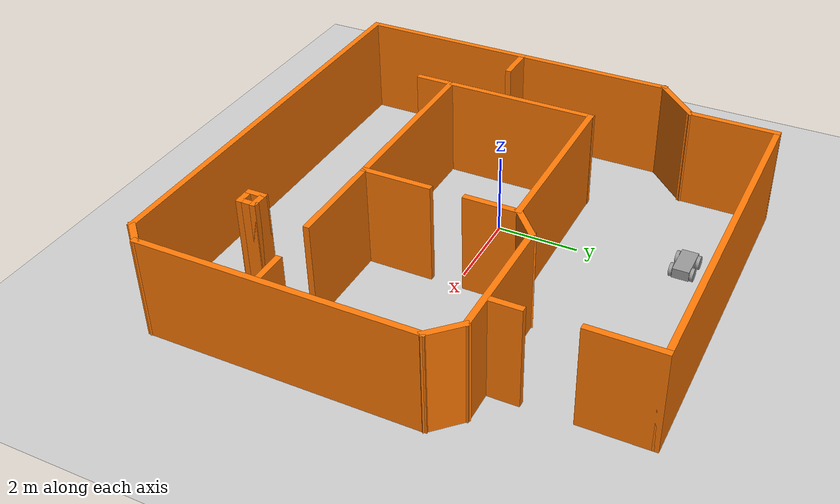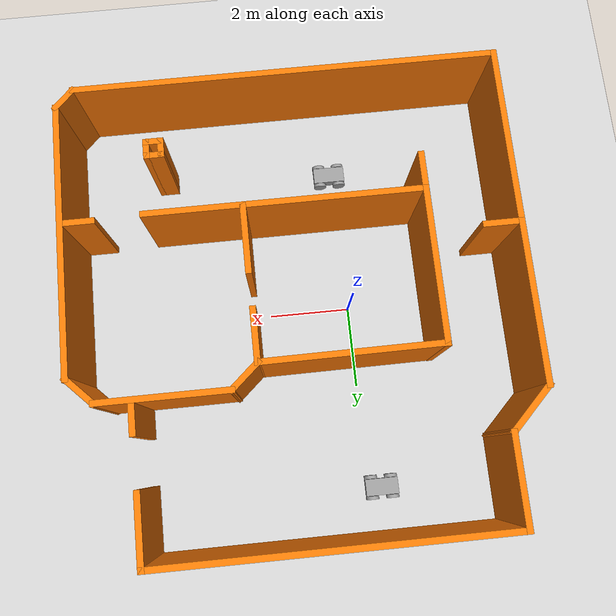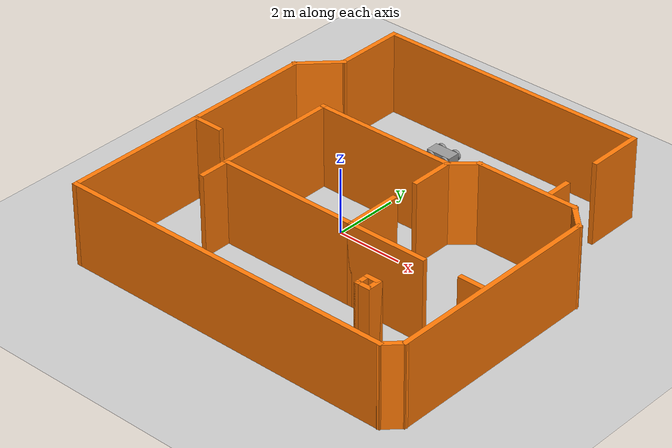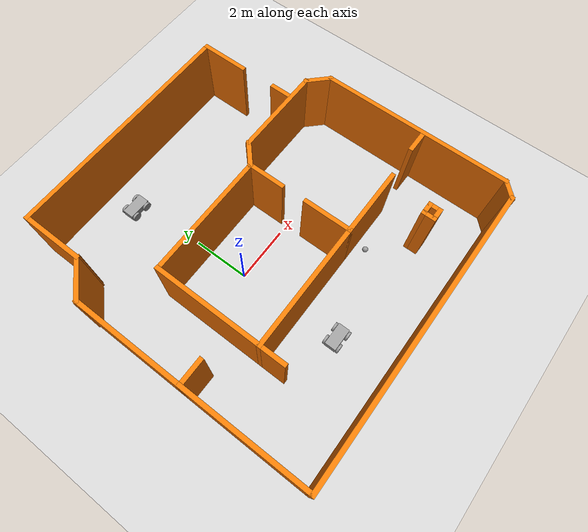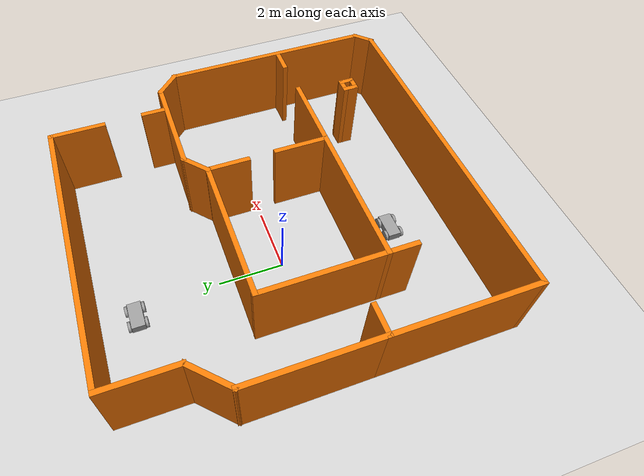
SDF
<sdf version="1.6">
 <world name="default">
  <plugin name="hello" filename="libhello.so"/>
  <light name="sun" type="directional">
   <pose>0 0 10 0 -0 0</pose>
   <diffuse>0.8 0.8 0.8 1</diffuse>
   <specular>0.2 0.2 0.2 1</specular>
   <attenuation>
    <range>1000</range>
    <constant>0.9</constant>
    <linear>0.01</linear>
    <quadratic>0.001</quadratic>
   </attenuation>
   <direction>-0.5 0.1 -0.9</direction>
   <spot><inner_angle>0</inner_angle><outer_angle>0</outer_angle><falloff>0</falloff></spot>
  </light>
  <model name="ground_plane">
   <static>1</static>
   <link name="link">
    <collision name="collision">
     <geometry><plane><normal>0 0 1</normal><size>100 100</size></plane></geometry>
     <surface>
      <contact><collide_bitmask>65535</collide_bitmask></contact>
      <friction><ode><mu>100</mu><mu2>50</mu2></ode></friction>
     </surface>
    </collision>
    <visual name="visual">
     <cast_shadows>0</cast_shadows>
     <geometry><plane><normal>0 0 1</normal><size>100 100</size></plane></geometry>
     <material>
      <script><uri>file://media/materials/scripts/gazebo.material</uri><name>Gazebo/Grey</name></script>
     </material>
    </visual>
   </link>
  </model>
  <gravity>0 0 -9.8</gravity>
  <magnetic_field>6e-06 2.3e-05 -4.2e-05</magnetic_field>
  <atmosphere type="adiabatic"/>
  <physics name="default_physics" default="0" type="ode">
   <max_step_size>0.001</max_step_size>
   <real_time_factor>1</real_time_factor>
   <real_time_update_rate>1000</real_time_update_rate>
  </physics>
  <scene><ambient>0.4 0.4 0.4 1</ambient><background>0.7 0.7 0.7 1</background><shadows>1</shadows></scene>
  <spherical_coordinates>
   <surface_model>EARTH_WGS84</surface_model>
   <latitude_deg>0</latitude_deg>
   <longitude_deg>0</longitude_deg>
   <elevation>0</elevation>
   <heading_deg>0</heading_deg>
  </spherical_coordinates>
  <model name="tinyHouse">
   <pose>1.31288 0.03056 0 0 -0 0</pose>
   <link name="Wall_10">
    <collision name="Wall_10_Collision">
     <geometry><box><size>0.75 0.15 2.5</size></box></geometry>
     <pose>0 0 1.25 0 -0 0</pose>
    </collision>
    <visual name="Wall_10_Visual">
     <pose>0 0 1.25 0 -0 0</pose>
     <geometry><box><size>0.75 0.15 2.5</size></box></geometry>
     <material>
      <script><uri>file://media/materials/scripts/gazebo.material</uri><name>Gazebo/Grey</name></script>
      <ambient>0.996078 0.47451 0.0196078 1</ambient>
     </material>
     <meta><layer>0</layer></meta>
    </visual>
    <pose>5.175 -5.39963 0 0 -0 -2.35619</pose>
   </link>
   <link name="Wall_11">
    <collision name="Wall_11_Collision">
     <geometry><box><size>10.5 0.15 2.5</size></box></geometry>
     <pose>0 0 1.25 0 -0 0</pose>
    </collision>
    <visual name="Wall_11_Visual">
     <pose>0 0 1.25 0 -0 0</pose>
     <geometry><box><size>10.5 0.15 2.5</size></box></geometry>
     <material>
      <script><uri>file://media/materials/scripts/gazebo.material</uri><name>Gazebo/Grey</name></script>
      <ambient>0.996078 0.47451 0.0196078 1</ambient>
     </material>
     <meta><layer>0</layer></meta>
    </visual>
    <pose>-0.212132 -5.61176 0 0 -0 3.14159</pose>
   </link>
   <link name="Wall_12">
    <collision name="Wall_12_Collision">
     <geometry><box><size>4.5 0.15 2.5</size></box></geometry>
     <pose>0 0 1.25 0 -0 0</pose>
    </collision>
    <visual name="Wall_12_Visual">
     <pose>0 0 1.25 0 -0 0</pose>
     <geometry><box><size>4.5 0.15 2.5</size></box></geometry>
     <material>
      <script><uri>file://media/materials/scripts/gazebo.material</uri><name>Gazebo/Grey</name></script>
      <ambient>0.996078 0.47451 0.0196078 1</ambient>
     </material>
     <meta><layer>0</layer></meta>
    </visual>
    <pose>-5.38713 -3.43676 0 0 -0 1.5708</pose>
   </link>
   <link name="Wall_13">
    <collision name="Wall_13_Collision">
     <geometry><box><size>1 0.15 2.5</size></box></geometry>
     <pose>0 0 1.25 0 -0 0</pose>
    </collision>
    <visual name="Wall_13_Visual">
     <pose>0 0 1.25 0 -0 0</pose>
     <geometry><box><size>1 0.15 2.5</size></box></geometry>
     <material>
      <script><uri>file://media/materials/scripts/gazebo.material</uri><name>Gazebo/Grey</name></script>
      <ambient>0.996078 0.47451 0.0196078 1</ambient>
     </material>
     <meta><layer>0</layer></meta>
    </visual>
    <pose>-4.96213 -1.26176 0 0 -0 0</pose>
   </link>
   <link name="Wall_18">
    <collision name="Wall_18_Collision">
     <geometry><box><size>0.5 0.15 2.5</size></box></geometry>
     <pose>0 0 1.25 0 -0 0</pose>
    </collision>
    <visual name="Wall_18_Visual">
     <pose>0 0 1.25 0 -0 0</pose>
     <geometry><box><size>0.5 0.15 2.5</size></box></geometry>
     <material>
      <script><uri>file://media/materials/scripts/gazebo.material</uri><name>Gazebo/Grey</name></script>
      <ambient>0.996078 0.47451 0.0196078 1</ambient>
     </material>
     <meta><layer>0</layer></meta>
    </visual>
    <pose>2.917 -3.91199 0 0 -0 -1.5708</pose>
   </link>
   <link name="Wall_19">
    <collision name="Wall_19_Collision">
     <geometry><box><size>0.5 0.15 2.5</size></box></geometry>
     <pose>0 0 1.25 0 -0 0</pose>
    </collision>
    <visual name="Wall_19_Visual">
     <pose>0 0 1.25 0 -0 0</pose>
     <geometry><box><size>0.5 0.15 2.5</size></box></geometry>
     <material>
      <script><uri>file://media/materials/scripts/gazebo.material</uri><name>Gazebo/Grey</name></script>
      <ambient>0.996078 0.47451 0.0196078 1</ambient>
     </material>
     <meta><layer>0</layer></meta>
    </visual>
    <pose>3.092 -4.08699 0 0 -0 0</pose>
   </link>
   <link name="Wall_2">
    <collision name="Wall_2_Collision">
     <geometry><box><size>4.5 0.15 2.5</size></box></geometry>
     <pose>0 0 1.25 0 -0 0</pose>
    </collision>
    <visual name="Wall_2_Visual">
     <pose>0 0 1.25 0 -0 0</pose>
     <geometry><box><size>4.5 0.15 2.5</size></box></geometry>
     <material>
      <script><uri>file://media/materials/scripts/gazebo.material</uri><name>Gazebo/Grey</name></script>
      <ambient>0.996078 0.47451 0.0196078 1</ambient>
     </material>
     <meta><layer>0</layer></meta>
    </visual>
    <pose>-1.08995 -2.2875 0 0 -0 0</pose>
   </link>
   <link name="Wall_20">
    <collision name="Wall_20_Collision">
     <geometry><box><size>0.5 0.15 2.5</size></box></geometry>
     <pose>0 0 1.25 0 -0 0</pose>
    </collision>
    <visual name="Wall_20_Visual">
     <pose>0 0 1.25 0 -0 0</pose>
     <geometry><box><size>0.5 0.15 2.5</size></box></geometry>
     <material>
      <script><uri>file://media/materials/scripts/gazebo.material</uri><name>Gazebo/Grey</name></script>
      <ambient>0.996078 0.47451 0.0196078 1</ambient>
     </material>
     <meta><layer>0</layer></meta>
    </visual>
    <pose>3.267 -3.91199 0 0 -0 1.5708</pose>
   </link>
   <link name="Wall_21">
    <collision name="Wall_21_Collision">
     <geometry><box><size>0.5 0.15 2.5</size></box></geometry>
     <pose>0 0 1.25 0 -0 0</pose>
    </collision>
    <visual name="Wall_21_Visual">
     <pose>0 0 1.25 0 -0 0</pose>
     <geometry><box><size>0.5 0.15 2.5</size></box></geometry>
     <material>
      <script><uri>file://media/materials/scripts/gazebo.material</uri><name>Gazebo/Grey</name></script>
      <ambient>0.996078 0.47451 0.0196078 1</ambient>
     </material>
     <meta><layer>0</layer></meta>
    </visual>
    <pose>3.092 -3.73699 0 0 -0 3.14159</pose>
   </link>
   <link name="Wall_23">
    <collision name="Wall_23_Collision">
     <geometry><box><size>1 0.15 2.5</size></box></geometry>
     <pose>0 0 1.25 0 -0 0</pose>
    </collision>
    <visual name="Wall_23_Visual">
     <pose>0 0 1.25 0 -0 0</pose>
     <geometry><box><size>1 0.15 2.5</size></box></geometry>
     <material>
      <script><uri>file://media/materials/scripts/gazebo.material</uri><name>Gazebo/Grey</name></script>
      <ambient>0.996078 0.47451 0.0196078 1</ambient>
     </material>
     <meta><layer>0</layer></meta>
    </visual>
    <pose>-3.26495 -2.7125 0 0 -0 -1.5708</pose>
   </link>
   <link name="Wall_25">
    <collision name="Wall_25_Collision">
     <geometry><box><size>2.5 0.15 2.5</size></box></geometry>
     <pose>0 0 1.25 0 -0 0</pose>
    </collision>
    <visual name="Wall_25_Visual">
     <pose>0 0 1.25 0 -0 0</pose>
     <geometry><box><size>2.5 0.15 2.5</size></box></geometry>
     <material>
      <script><uri>file://media/materials/scripts/gazebo.material</uri><name>Gazebo/Grey</name></script>
      <ambient>0.996078 0.47451 0.0196078 1</ambient>
     </material>
     <meta><layer>0</layer></meta>
    </visual>
    <pose>2.26005 -2.2875 0 0 -0 0</pose>
   </link>
   <link name="Wall_29">
    <collision name="Wall_29_Collision">
     <geometry><box><size>0.75 0.15 2.5</size></box></geometry>
     <pose>0 0 1.25 0 -0 0</pose>
    </collision>
    <visual name="Wall_29_Visual">
     <pose>0 0 1.25 0 -0 0</pose>
     <geometry><box><size>0.75 0.15 2.5</size></box></geometry>
     <material>
      <script><uri>file://media/materials/scripts/gazebo.material</uri><name>Gazebo/Grey</name></script>
      <ambient>0.996078 0.47451 0.0196078 1</ambient>
     </material>
     <meta><layer>0</layer></meta>
    </visual>
    <pose>4.93949 -2.2405 0 0 -0 0</pose>
   </link>
   <link name="Wall_3">
    <collision name="Wall_3_Collision">
     <geometry><box><size>1.75 0.15 2.5</size></box></geometry>
     <pose>0 0 1.25 0 -0 0</pose>
    </collision>
    <visual name="Wall_3_Visual">
     <pose>0 0 1.25 0 -0 0</pose>
     <geometry><box><size>1.75 0.15 2.5</size></box></geometry>
     <material>
      <script><uri>file://media/materials/scripts/gazebo.material</uri><name>Gazebo/Grey</name></script>
      <ambient>0.996078 0.47451 0.0196078 1</ambient>
     </material>
     <meta><layer>0</layer></meta>
    </visual>
    <pose>1.08505 -1.4875 0 0 -0 1.5708</pose>
   </link>
   <link name="Wall_31">
    <collision name="Wall_31_Collision">
     <geometry><box><size>4 0.15 2.5</size></box></geometry>
     <pose>0 0 1.25 0 -0 0</pose>
    </collision>
    <visual name="Wall_31_Visual">
     <pose>0 0 1.25 0 -0 0</pose>
     <geometry><box><size>4 0.15 2.5</size></box></geometry>
     <material>
      <script><uri>file://media/materials/scripts/gazebo.material</uri><name>Gazebo/Grey</name></script>
      <ambient>0.996078 0.47451 0.0196078 1</ambient>
     </material>
     <meta><layer>0</layer></meta>
    </visual>
    <pose>-5.38713 0.663236 0 0 -0 1.5708</pose>
   </link>
   <link name="Wall_33">
    <collision name="Wall_33_Collision">
     <geometry><box><size>1.5 0.15 2.5</size></box></geometry>
     <pose>0 0 1.25 0 -0 0</pose>
    </collision>
    <visual name="Wall_33_Visual">
     <pose>0 0 1.25 0 -0 0</pose>
     <geometry><box><size>1.5 0.15 2.5</size></box></geometry>
     <material>
      <script><uri>file://media/materials/scripts/gazebo.material</uri><name>Gazebo/Grey</name></script>
      <ambient>0.996078 0.47451 0.0196078 1</ambient>
     </material>
     <meta><layer>0</layer></meta>
    </visual>
    <pose>-4.90984 3.06553 0 0 -0 0.785398</pose>
   </link>
   <link name="Wall_37">
    <collision name="Wall_37_Collision">
     <geometry><box><size>3.87606 0.15 2.5</size></box></geometry>
     <pose>0 0 1.25 0 -0 0</pose>
    </collision>
    <visual name="Wall_37_Visual">
     <pose>0 0 1.25 0 -0 0</pose>
     <geometry><box><size>3.87606 0.15 2.5</size></box></geometry>
     <material>
      <script><uri>file://media/materials/scripts/gazebo.material</uri><name>Gazebo/Grey</name></script>
      <ambient>0.996078 0.47451 0.0196078 1</ambient>
     </material>
     <meta><layer>0</layer></meta>
    </visual>
    <pose>-3.26495 -0.424472 0 0 -0 1.5708</pose>
   </link>
   <link name="Wall_38">
    <collision name="Wall_38_Collision">
     <geometry><box><size>4.46127 0.15 2.5</size></box></geometry>
     <pose>0 0 1.25 0 -0 0</pose>
    </collision>
    <visual name="Wall_38_Visual">
     <pose>0 0 1.25 0 -0 0</pose>
     <geometry><box><size>4.46127 0.15 2.5</size></box></geometry>
     <material>
      <script><uri>file://media/materials/scripts/gazebo.material</uri><name>Gazebo/Grey</name></script>
      <ambient>0.996078 0.47451 0.0196078 1</ambient>
     </material>
     <meta><layer>0</layer></meta>
    </visual>
    <pose>-1.09965 1.44007 0 0 -0 0.005202</pose>
   </link>
   <link name="Wall_39">
    <collision name="Wall_39_Collision">
     <geometry><box><size>1.37606 0.15 2.5</size></box></geometry>
     <pose>0 0 1.25 0 -0 0</pose>
    </collision>
    <visual name="Wall_39_Visual">
     <pose>0 0 1.25 0 -0 0</pose>
     <geometry><box><size>1.37606 0.15 2.5</size></box></geometry>
     <material>
      <script><uri>file://media/materials/scripts/gazebo.material</uri><name>Gazebo/Grey</name></script>
      <ambient>0.996078 0.47451 0.0196078 1</ambient>
     </material>
     <meta><layer>0</layer></meta>
    </visual>
    <pose>1.06566 0.838258 0 0 -0 -1.5708</pose>
   </link>
   <link name="Wall_41">
    <collision name="Wall_41_Collision">
     <geometry><box><size>2.25 0.15 2.5</size></box></geometry>
     <pose>0 0 1.25 0 -0 0</pose>
    </collision>
    <visual name="Wall_41_Visual">
     <pose>0 0 1.25 0 -0 0</pose>
     <geometry><box><size>2.25 0.15 2.5</size></box></geometry>
     <material>
      <script><uri>file://media/materials/scripts/gazebo.material</uri><name>Gazebo/Grey</name></script>
      <ambient>0.996078 0.47451 0.0196078 1</ambient>
     </material>
     <meta><layer>0</layer></meta>
    </visual>
    <pose>-4.43254 4.59283 0 0 -0 1.5708</pose>
   </link>
   <link name="Wall_42">
    <collision name="Wall_42_Collision">
     <geometry><box><size>8.5 0.15 2.5</size></box></geometry>
     <pose>0 0 1.25 0 -0 0</pose>
    </collision>
    <visual name="Wall_42_Visual">
     <pose>0 0 1.25 0 -0 0</pose>
     <geometry><box><size>8.5 0.15 2.5</size></box></geometry>
     <material>
      <script><uri>file://media/materials/scripts/gazebo.material</uri><name>Gazebo/Grey</name></script>
      <ambient>0.996078 0.47451 0.0196078 1</ambient>
     </material>
     <meta><layer>0</layer></meta>
    </visual>
    <pose>-0.257538 5.64283 0 0 -0 0</pose>
   </link>
   <link name="Wall_43">
    <collision name="Wall_43_Collision">
     <geometry><box><size>1.75 0.15 2.5</size></box></geometry>
     <pose>0 0 1.25 0 -0 0</pose>
    </collision>
    <visual name="Wall_43_Visual">
     <pose>0 0 1.25 0 -0 0</pose>
     <geometry><box><size>1.75 0.15 2.5</size></box></geometry>
     <material>
      <script><uri>file://media/materials/scripts/gazebo.material</uri><name>Gazebo/Grey</name></script>
      <ambient>0.996078 0.47451 0.0196078 1</ambient>
     </material>
     <meta><layer>0</layer></meta>
    </visual>
    <pose>3.91746 4.84283 0 0 -0 -1.5708</pose>
   </link>
   <link name="Wall_45">
    <collision name="Wall_45_Collision">
     <geometry><box><size>0.75 0.15 2.5</size></box></geometry>
     <pose>0 0 1.25 0 -0 0</pose>
    </collision>
    <visual name="Wall_45_Visual">
     <pose>0 0 1.25 0 -0 0</pose>
     <geometry><box><size>0.75 0.15 2.5</size></box></geometry>
     <material>
      <script><uri>file://media/materials/scripts/gazebo.material</uri><name>Gazebo/Grey</name></script>
      <ambient>0.996078 0.47451 0.0196078 1</ambient>
     </material>
     <meta><layer>0</layer></meta>
    </visual>
    <pose>3.94312 2.45344 0 0 -0 -1.5708</pose>
   </link>
   <link name="Wall_6">
    <collision name="Wall_6_Collision">
     <geometry><box><size>0.994508 0.15 2.5</size></box></geometry>
     <pose>0 0 1.25 0 -0 0</pose>
    </collision>
    <visual name="Wall_6_Visual">
     <pose>0 0 1.25 0 -0 0</pose>
     <geometry><box><size>0.994508 0.15 2.5</size></box></geometry>
     <material>
      <script><uri>file://media/materials/scripts/gazebo.material</uri><name>Gazebo/Grey</name></script>
      <ambient>0.996078 0.47451 0.0196078 1</ambient>
     </material>
     <meta><layer>0</layer></meta>
    </visual>
    <pose>1.37103 1.73241 0 0 -0 0.728535</pose>
   </link>
   <link name="Wall_7">
    <collision name="Wall_7_Collision">
     <geometry><box><size>3.25 0.15 2.5</size></box></geometry>
     <pose>0 0 1.25 0 -0 0</pose>
    </collision>
    <visual name="Wall_7_Visual">
     <pose>0 0 1.25 0 -0 0</pose>
     <geometry><box><size>3.25 0.15 2.5</size></box></geometry>
     <material>
      <script><uri>file://media/materials/scripts/gazebo.material</uri><name>Gazebo/Grey</name></script>
      <ambient>0.996078 0.47451 0.0196078 1</ambient>
     </material>
     <meta><layer>0</layer></meta>
    </visual>
    <pose>3.23609 2.01354 0 0 -0 0</pose>
   </link>
   <link name="Wall_8">
    <collision name="Wall_8_Collision">
     <geometry><box><size>1 0.15 2.5</size></box></geometry>
     <pose>0 0 1.25 0 -0 0</pose>
    </collision>
    <visual name="Wall_8_Visual">
     <pose>0 0 1.25 0 -0 0</pose>
     <geometry><box><size>1 0.15 2.5</size></box></geometry>
     <material>
      <script><uri>file://media/materials/scripts/gazebo.material</uri><name>Gazebo/Grey</name></script>
      <ambient>0.996078 0.47451 0.0196078 1</ambient>
     </material>
     <meta><layer>0</layer></meta>
    </visual>
    <pose>5.08661 1.71302 0 0 -0 -0.785398</pose>
   </link>
   <link name="Wall_9">
    <collision name="Wall_9_Collision">
     <geometry><box><size>6.75 0.15 2.5</size></box></geometry>
     <pose>0 0 1.25 0 -0 0</pose>
    </collision>
    <visual name="Wall_9_Visual">
     <pose>0 0 1.25 0 -0 0</pose>
     <geometry><box><size>6.75 0.15 2.5</size></box></geometry>
     <material>
      <script><uri>file://media/materials/scripts/gazebo.material</uri><name>Gazebo/Grey</name></script>
      <ambient>0.996078 0.47451 0.0196078 1</ambient>
     </material>
     <meta><layer>0</layer></meta>
    </visual>
    <pose>5.38713 -1.8875 0 0 -0 -1.5708</pose>
   </link>
   <static>1</static>
  </model>
  <model name="myrobot">
   <link name="link_0">
    <inertial>
     <mass>1</mass>
     <inertia>
      <ixx>0.166667</ixx>
      <ixy>0</ixy>
      <ixz>0</ixz>
      <iyy>0.166667</iyy>
      <iyz>0</iyz>
      <izz>0.166667</izz>
     </inertia>
    </inertial>
    <pose>-0.043288 -0.021551 0.02399 0 -0 0</pose>
    <visual name="visual">
     <geometry><box><size>0.8 0.4 0.25</size></box></geometry>
     <material>
      <lighting>1</lighting>
      <script><uri>file://media/materials/scripts/gazebo.material</uri><name>Gazebo/Grey</name></script>
      <shader type="pixel"><normal_map>__default__</normal_map></shader>
      <ambient>0.3 0.3 0.3 1</ambient>
      <diffuse>0.7 0.7 0.7 1</diffuse>
      <specular>0.01 0.01 0.01 1</specular>
      <emissive>0 0 0 1</emissive>
     </material>
    </visual>
    <collision name="collision">
     <geometry><box><size>0.8 0.4 0.25</size></box></geometry>
     <surface>
      <friction>
       <ode><mu>1</mu><mu2>1</mu2><fdir1>0 0 0</fdir1><slip1>0</slip1><slip2>0</slip2></ode>
       <torsional>
        <coefficient>1</coefficient>
        <patch_radius>0</patch_radius>
        <surface_radius>0</surface_radius>
        <use_patch_radius>1</use_patch_radius>
        <ode><slip>0</slip></ode>
       </torsional>
      </friction>
      <bounce><restitution_coefficient>0</restitution_coefficient><threshold>1e+06</threshold></bounce>
      <contact>
       <collide_without_contact>0</collide_without_contact>
       <collide_without_contact_bitmask>1</collide_without_contact_bitmask>
       <collide_bitmask>1</collide_bitmask>
       <ode>
        <soft_cfm>0</soft_cfm>
        <soft_erp>0.2</soft_erp>
        <kp>1e+13</kp>
        <kd>1</kd>
        <max_vel>0.01</max_vel>
        <min_depth>0</min_depth>
       </ode>
       <bullet>
        <split_impulse>1</split_impulse>
        <split_impulse_penetration_threshold>-0.01</split_impulse_penetration_threshold>
        <soft_cfm>0</soft_cfm>
        <soft_erp>0.2</soft_erp>
        <kp>1e+13</kp>
        <kd>1</kd>
       </bullet>
      </contact>
     </surface>
    </collision>
   </link>
   <link name="link_1">
    <inertial>
     <mass>1</mass>
     <inertia><ixx>0.145833</ixx><ixy>0</ixy><ixz>0</ixz><iyy>0.145833</iyy><iyz>0</iyz><izz>0.125</izz></inertia>
    </inertial>
    <pose>-0.293288 0.228449 0.00399 1.5707 -0 0</pose>
    <visual name="visual">
     <geometry><cylinder><radius>0.16</radius><length>0.08</length></cylinder></geometry>
     <material>
      <lighting>1</lighting>
      <script><uri>file://media/materials/scripts/gazebo.material</uri><name>Gazebo/Grey</name></script>
      <shader type="pixel"><normal_map>__default__</normal_map></shader>
      <ambient>0.3 0.3 0.3 1</ambient>
      <diffuse>0.7 0.7 0.7 1</diffuse>
      <specular>0.01 0.01 0.01 1</specular>
      <emissive>0 0 0 1</emissive>
     </material>
    </visual>
    <collision name="collision">
     <geometry><cylinder><radius>0.16</radius><length>0.08</length></cylinder></geometry>
     <surface>
      <friction>
       <ode><mu>1</mu><mu2>1</mu2><fdir1>0 0 0</fdir1><slip1>0</slip1><slip2>0</slip2></ode>
       <torsional>
        <coefficient>1</coefficient>
        <patch_radius>0</patch_radius>
        <surface_radius>0</surface_radius>
        <use_patch_radius>1</use_patch_radius>
        <ode><slip>0</slip></ode>
       </torsional>
      </friction>
      <bounce><restitution_coefficient>0</restitution_coefficient><threshold>1e+06</threshold></bounce>
      <contact>
       <collide_without_contact>0</collide_without_contact>
       <collide_without_contact_bitmask>1</collide_without_contact_bitmask>
       <collide_bitmask>1</collide_bitmask>
       <ode>
        <soft_cfm>0</soft_cfm>
        <soft_erp>0.2</soft_erp>
        <kp>1e+13</kp>
        <kd>1</kd>
        <max_vel>0.01</max_vel>
        <min_depth>0</min_depth>
       </ode>
       <bullet>
        <split_impulse>1</split_impulse>
        <split_impulse_penetration_threshold>-0.01</split_impulse_penetration_threshold>
        <soft_cfm>0</soft_cfm>
        <soft_erp>0.2</soft_erp>
        <kp>1e+13</kp>
        <kd>1</kd>
       </bullet>
      </contact>
     </surface>
    </collision>
   </link>
   <link name="link_1_clone">
    <inertial>
     <mass>1</mass>
     <inertia><ixx>0.145833</ixx><ixy>0</ixy><ixz>0</ixz><iyy>0.145833</iyy><iyz>0</iyz><izz>0.125</izz></inertia>
    </inertial>
    <pose>0.206712 -0.271551 0.00399 1.5707 -0 0</pose>
    <visual name="visual">
     <geometry><cylinder><radius>0.16</radius><length>0.08</length></cylinder></geometry>
     <material>
      <lighting>1</lighting>
      <script><uri>file://media/materials/scripts/gazebo.material</uri><name>Gazebo/Grey</name></script>
      <shader type="pixel"><normal_map>__default__</normal_map></shader>
      <ambient>0.3 0.3 0.3 1</ambient>
      <diffuse>0.7 0.7 0.7 1</diffuse>
      <specular>0.01 0.01 0.01 1</specular>
      <emissive>0 0 0 1</emissive>
     </material>
    </visual>
    <collision name="collision">
     <geometry><cylinder><radius>0.16</radius><length>0.08</length></cylinder></geometry>
     <surface>
      <friction>
       <ode><mu>1</mu><mu2>1</mu2><fdir1>0 0 0</fdir1><slip1>0</slip1><slip2>0</slip2></ode>
       <torsional>
        <coefficient>1</coefficient>
        <patch_radius>0</patch_radius>
        <surface_radius>0</surface_radius>
        <use_patch_radius>1</use_patch_radius>
        <ode><slip>0</slip></ode>
       </torsional>
      </friction>
      <bounce><restitution_coefficient>0</restitution_coefficient><threshold>1e+06</threshold></bounce>
      <contact>
       <collide_without_contact>0</collide_without_contact>
       <collide_without_contact_bitmask>1</collide_without_contact_bitmask>
       <collide_bitmask>1</collide_bitmask>
       <ode>
        <soft_cfm>0</soft_cfm>
        <soft_erp>0.2</soft_erp>
        <kp>1e+13</kp>
        <kd>1</kd>
        <max_vel>0.01</max_vel>
        <min_depth>0</min_depth>
       </ode>
       <bullet>
        <split_impulse>1</split_impulse>
        <split_impulse_penetration_threshold>-0.01</split_impulse_penetration_threshold>
        <soft_cfm>0</soft_cfm>
        <soft_erp>0.2</soft_erp>
        <kp>1e+13</kp>
        <kd>1</kd>
       </bullet>
      </contact>
     </surface>
    </collision>
   </link>
   <link name="link_1_clone_0">
    <inertial>
     <mass>1</mass>
     <inertia><ixx>0.145833</ixx><ixy>0</ixy><ixz>0</ixz><iyy>0.145833</iyy><iyz>0</iyz><izz>0.125</izz></inertia>
    </inertial>
    <pose>-0.293288 -0.271551 0.00399 1.5707 -0 0</pose>
    <visual name="visual">
     <geometry><cylinder><radius>0.16</radius><length>0.08</length></cylinder></geometry>
     <material>
      <lighting>1</lighting>
      <script><uri>file://media/materials/scripts/gazebo.material</uri><name>Gazebo/Grey</name></script>
      <shader type="pixel"><normal_map>__default__</normal_map></shader>
      <ambient>0.3 0.3 0.3 1</ambient>
      <diffuse>0.7 0.7 0.7 1</diffuse>
      <specular>0.01 0.01 0.01 1</specular>
      <emissive>0 0 0 1</emissive>
     </material>
    </visual>
    <collision name="collision">
     <geometry><cylinder><radius>0.16</radius><length>0.08</length></cylinder></geometry>
     <surface>
      <friction>
       <ode><mu>1</mu><mu2>1</mu2><fdir1>0 0 0</fdir1><slip1>0</slip1><slip2>0</slip2></ode>
       <torsional>
        <coefficient>1</coefficient>
        <patch_radius>0</patch_radius>
        <surface_radius>0</surface_radius>
        <use_patch_radius>1</use_patch_radius>
        <ode><slip>0</slip></ode>
       </torsional>
      </friction>
      <bounce><restitution_coefficient>0</restitution_coefficient><threshold>1e+06</threshold></bounce>
      <contact>
       <collide_without_contact>0</collide_without_contact>
       <collide_without_contact_bitmask>1</collide_without_contact_bitmask>
       <collide_bitmask>1</collide_bitmask>
       <ode>
        <soft_cfm>0</soft_cfm>
        <soft_erp>0.2</soft_erp>
        <kp>1e+13</kp>
        <kd>1</kd>
        <max_vel>0.01</max_vel>
        <min_depth>0</min_depth>
       </ode>
       <bullet>
        <split_impulse>1</split_impulse>
        <split_impulse_penetration_threshold>-0.01</split_impulse_penetration_threshold>
        <soft_cfm>0</soft_cfm>
        <soft_erp>0.2</soft_erp>
        <kp>1e+13</kp>
        <kd>1</kd>
       </bullet>
      </contact>
     </surface>
    </collision>
   </link>
   <link name="link_1_clone_1">
    <inertial>
     <mass>1</mass>
     <inertia><ixx>0.145833</ixx><ixy>0</ixy><ixz>0</ixz><iyy>0.145833</iyy><iyz>0</iyz><izz>0.125</izz></inertia>
    </inertial>
    <pose>0.206712 0.228449 0.00399 1.5707 -0 0</pose>
    <visual name="visual">
     <geometry><cylinder><radius>0.16</radius><length>0.08</length></cylinder></geometry>
     <material>
      <lighting>1</lighting>
      <script><uri>file://media/materials/scripts/gazebo.material</uri><name>Gazebo/Grey</name></script>
      <shader type="pixel"><normal_map>__default__</normal_map></shader>
      <ambient>0.3 0.3 0.3 1</ambient>
      <diffuse>0.7 0.7 0.7 1</diffuse>
      <specular>0.01 0.01 0.01 1</specular>
      <emissive>0 0 0 1</emissive>
     </material>
    </visual>
    <collision name="collision">
     <geometry><cylinder><radius>0.16</radius><length>0.08</length></cylinder></geometry>
     <surface>
      <friction>
       <ode><mu>1</mu><mu2>1</mu2><fdir1>0 0 0</fdir1><slip1>0</slip1><slip2>0</slip2></ode>
       <torsional>
        <coefficient>1</coefficient>
        <patch_radius>0</patch_radius>
        <surface_radius>0</surface_radius>
        <use_patch_radius>1</use_patch_radius>
        <ode><slip>0</slip></ode>
       </torsional>
      </friction>
      <bounce><restitution_coefficient>0</restitution_coefficient><threshold>1e+06</threshold></bounce>
      <contact>
       <collide_without_contact>0</collide_without_contact>
       <collide_without_contact_bitmask>1</collide_without_contact_bitmask>
       <collide_bitmask>1</collide_bitmask>
       <ode>
        <soft_cfm>0</soft_cfm>
        <soft_erp>0.2</soft_erp>
        <kp>1e+13</kp>
        <kd>1</kd>
        <max_vel>0.01</max_vel>
        <min_depth>0</min_depth>
       </ode>
       <bullet>
        <split_impulse>1</split_impulse>
        <split_impulse_penetration_threshold>-0.01</split_impulse_penetration_threshold>
        <soft_cfm>0</soft_cfm>
        <soft_erp>0.2</soft_erp>
        <kp>1e+13</kp>
        <kd>1</kd>
       </bullet>
      </contact>
     </surface>
    </collision>
   </link>
   <joint name="link_0_JOINT_1" type="revolute">
    <parent>link_0</parent>
    <child>link_1_clone_0</child>
    <axis>
     <xyz>1 0 0</xyz>
     <limit>
      <lower>-1.79769e+308</lower>
      <upper>1.79769e+308</upper>
      <effort>-1</effort>
      <velocity>-1</velocity>
     </limit>
     <dynamics>
      <spring_reference>0</spring_reference>
      <spring_stiffness>0</spring_stiffness>
      <damping>0</damping>
     </dynamics>
     <use_parent_model_frame>0</use_parent_model_frame>
    </axis>
    <physics>
     <ode><limit><cfm>0</cfm><erp>0.2</erp></limit><suspension><cfm>0</cfm><erp>0.2</erp></suspension></ode>
    </physics>
   </joint>
   <joint name="link_0_JOINT_2" type="revolute">
    <parent>link_0</parent>
    <child>link_1</child>
    <axis>
     <xyz>1 0 0</xyz>
     <limit>
      <lower>-1.79769e+308</lower>
      <upper>1.79769e+308</upper>
      <effort>-1</effort>
      <velocity>-1</velocity>
     </limit>
     <dynamics>
      <spring_reference>0</spring_reference>
      <spring_stiffness>0</spring_stiffness>
      <damping>0</damping>
     </dynamics>
     <use_parent_model_frame>0</use_parent_model_frame>
    </axis>
    <physics>
     <ode><limit><cfm>0</cfm><erp>0.2</erp></limit><suspension><cfm>0</cfm><erp>0.2</erp></suspension></ode>
    </physics>
   </joint>
   <joint name="link_0_JOINT_3" type="revolute">
    <parent>link_0</parent>
    <child>link_1_clone_1</child>
    <axis>
     <xyz>1 0 0</xyz>
     <limit>
      <lower>-1.79769e+308</lower>
      <upper>1.79769e+308</upper>
      <effort>-1</effort>
      <velocity>-1</velocity>
     </limit>
     <dynamics>
      <spring_reference>0</spring_reference>
      <spring_stiffness>0</spring_stiffness>
      <damping>0</damping>
     </dynamics>
     <use_parent_model_frame>0</use_parent_model_frame>
    </axis>
    <physics>
     <ode><limit><cfm>0</cfm><erp>0.2</erp></limit><suspension><cfm>0</cfm><erp>0.2</erp></suspension></ode>
    </physics>
   </joint>
   <joint name="link_0_JOINT_4" type="revolute">
    <parent>link_0</parent>
    <child>link_1_clone</child>
    <axis>
     <xyz>1 0 0</xyz>
     <limit>
      <lower>-1.79769e+308</lower>
      <upper>1.79769e+308</upper>
      <effort>-1</effort>
      <velocity>-1</velocity>
     </limit>
     <dynamics>
      <spring_reference>0</spring_reference>
      <spring_stiffness>0</spring_stiffness>
      <damping>0</damping>
     </dynamics>
     <use_parent_model_frame>0</use_parent_model_frame>
    </axis>
    <physics>
     <ode><limit><cfm>0</cfm><erp>0.2</erp></limit><suspension><cfm>0</cfm><erp>0.2</erp></suspension></ode>
    </physics>
   </joint>
   <static>0</static>
   <pose>0.156243 -3.63884 0.156003 -1e-05 -2e-06 0.000312</pose>
  </model>
  <model name="myrobot_0">
   <link name="link_0">
    <inertial>
     <mass>1</mass>
     <inertia>
      <ixx>0.166667</ixx>
      <ixy>0</ixy>
      <ixz>0</ixz>
      <iyy>0.166667</iyy>
      <iyz>0</iyz>
      <izz>0.166667</izz>
     </inertia>
    </inertial>
    <pose>-0.043288 -0.021551 0.02399 0 -0 0</pose>
    <visual name="visual">
     <geometry><box><size>0.8 0.4 0.25</size></box></geometry>
     <material>
      <lighting>1</lighting>
      <script><uri>file://media/materials/scripts/gazebo.material</uri><name>Gazebo/Grey</name></script>
      <shader type="pixel"><normal_map>__default__</normal_map></shader>
      <ambient>0.3 0.3 0.3 1</ambient>
      <diffuse>0.7 0.7 0.7 1</diffuse>
      <specular>0.01 0.01 0.01 1</specular>
      <emissive>0 0 0 1</emissive>
     </material>
    </visual>
    <collision name="collision">
     <geometry><box><size>0.8 0.4 0.25</size></box></geometry>
     <surface>
      <friction>
       <ode><mu>1</mu><mu2>1</mu2><fdir1>0 0 0</fdir1><slip1>0</slip1><slip2>0</slip2></ode>
       <torsional>
        <coefficient>1</coefficient>
        <patch_radius>0</patch_radius>
        <surface_radius>0</surface_radius>
        <use_patch_radius>1</use_patch_radius>
        <ode><slip>0</slip></ode>
       </torsional>
      </friction>
      <bounce><restitution_coefficient>0</restitution_coefficient><threshold>1e+06</threshold></bounce>
      <contact>
       <collide_without_contact>0</collide_without_contact>
       <collide_without_contact_bitmask>1</collide_without_contact_bitmask>
       <collide_bitmask>1</collide_bitmask>
       <ode>
        <soft_cfm>0</soft_cfm>
        <soft_erp>0.2</soft_erp>
        <kp>1e+13</kp>
        <kd>1</kd>
        <max_vel>0.01</max_vel>
        <min_depth>0</min_depth>
       </ode>
       <bullet>
        <split_impulse>1</split_impulse>
        <split_impulse_penetration_threshold>-0.01</split_impulse_penetration_threshold>
        <soft_cfm>0</soft_cfm>
        <soft_erp>0.2</soft_erp>
        <kp>1e+13</kp>
        <kd>1</kd>
       </bullet>
      </contact>
     </surface>
    </collision>
   </link>
   <link name="link_1">
    <inertial>
     <mass>1</mass>
     <inertia><ixx>0.145833</ixx><ixy>0</ixy><ixz>0</ixz><iyy>0.145833</iyy><iyz>0</iyz><izz>0.125</izz></inertia>
    </inertial>
    <pose>-0.293288 0.228449 0.00399 1.5707 -0 0</pose>
    <visual name="visual">
     <geometry><cylinder><radius>0.16</radius><length>0.08</length></cylinder></geometry>
     <material>
      <lighting>1</lighting>
      <script><uri>file://media/materials/scripts/gazebo.material</uri><name>Gazebo/Grey</name></script>
      <shader type="pixel"><normal_map>__default__</normal_map></shader>
      <ambient>0.3 0.3 0.3 1</ambient>
      <diffuse>0.7 0.7 0.7 1</diffuse>
      <specular>0.01 0.01 0.01 1</specular>
      <emissive>0 0 0 1</emissive>
     </material>
    </visual>
    <collision name="collision">
     <geometry><cylinder><radius>0.16</radius><length>0.08</length></cylinder></geometry>
     <surface>
      <friction>
       <ode><mu>1</mu><mu2>1</mu2><fdir1>0 0 0</fdir1><slip1>0</slip1><slip2>0</slip2></ode>
       <torsional>
        <coefficient>1</coefficient>
        <patch_radius>0</patch_radius>
        <surface_radius>0</surface_radius>
        <use_patch_radius>1</use_patch_radius>
        <ode><slip>0</slip></ode>
       </torsional>
      </friction>
      <bounce><restitution_coefficient>0</restitution_coefficient><threshold>1e+06</threshold></bounce>
      <contact>
       <collide_without_contact>0</collide_without_contact>
       <collide_without_contact_bitmask>1</collide_without_contact_bitmask>
       <collide_bitmask>1</collide_bitmask>
       <ode>
        <soft_cfm>0</soft_cfm>
        <soft_erp>0.2</soft_erp>
        <kp>1e+13</kp>
        <kd>1</kd>
        <max_vel>0.01</max_vel>
        <min_depth>0</min_depth>
       </ode>
       <bullet>
        <split_impulse>1</split_impulse>
        <split_impulse_penetration_threshold>-0.01</split_impulse_penetration_threshold>
        <soft_cfm>0</soft_cfm>
        <soft_erp>0.2</soft_erp>
        <kp>1e+13</kp>
        <kd>1</kd>
       </bullet>
      </contact>
     </surface>
    </collision>
   </link>
   <link name="link_1_clone">
    <inertial>
     <mass>1</mass>
     <inertia><ixx>0.145833</ixx><ixy>0</ixy><ixz>0</ixz><iyy>0.145833</iyy><iyz>0</iyz><izz>0.125</izz></inertia>
    </inertial>
    <pose>0.206712 -0.271551 0.00399 1.5707 -0 0</pose>
    <visual name="visual">
     <geometry><cylinder><radius>0.16</radius><length>0.08</length></cylinder></geometry>
     <material>
      <lighting>1</lighting>
      <script><uri>file://media/materials/scripts/gazebo.material</uri><name>Gazebo/Grey</name></script>
      <shader type="pixel"><normal_map>__default__</normal_map></shader>
      <ambient>0.3 0.3 0.3 1</ambient>
      <diffuse>0.7 0.7 0.7 1</diffuse>
      <specular>0.01 0.01 0.01 1</specular>
      <emissive>0 0 0 1</emissive>
     </material>
    </visual>
    <collision name="collision">
     <geometry><cylinder><radius>0.16</radius><length>0.08</length></cylinder></geometry>
     <surface>
      <friction>
       <ode><mu>1</mu><mu2>1</mu2><fdir1>0 0 0</fdir1><slip1>0</slip1><slip2>0</slip2></ode>
       <torsional>
        <coefficient>1</coefficient>
        <patch_radius>0</patch_radius>
        <surface_radius>0</surface_radius>
        <use_patch_radius>1</use_patch_radius>
        <ode><slip>0</slip></ode>
       </torsional>
      </friction>
      <bounce><restitution_coefficient>0</restitution_coefficient><threshold>1e+06</threshold></bounce>
      <contact>
       <collide_without_contact>0</collide_without_contact>
       <collide_without_contact_bitmask>1</collide_without_contact_bitmask>
       <collide_bitmask>1</collide_bitmask>
       <ode>
        <soft_cfm>0</soft_cfm>
        <soft_erp>0.2</soft_erp>
        <kp>1e+13</kp>
        <kd>1</kd>
        <max_vel>0.01</max_vel>
        <min_depth>0</min_depth>
       </ode>
       <bullet>
        <split_impulse>1</split_impulse>
        <split_impulse_penetration_threshold>-0.01</split_impulse_penetration_threshold>
        <soft_cfm>0</soft_cfm>
        <soft_erp>0.2</soft_erp>
        <kp>1e+13</kp>
        <kd>1</kd>
       </bullet>
      </contact>
     </surface>
    </collision>
   </link>
   <link name="link_1_clone_0">
    <inertial>
     <mass>1</mass>
     <inertia><ixx>0.145833</ixx><ixy>0</ixy><ixz>0</ixz><iyy>0.145833</iyy><iyz>0</iyz><izz>0.125</izz></inertia>
    </inertial>
    <pose>-0.293288 -0.271551 0.00399 1.5707 -0 0</pose>
    <visual name="visual">
     <geometry><cylinder><radius>0.16</radius><length>0.08</length></cylinder></geometry>
     <material>
      <lighting>1</lighting>
      <script><uri>file://media/materials/scripts/gazebo.material</uri><name>Gazebo/Grey</name></script>
      <shader type="pixel"><normal_map>__default__</normal_map></shader>
      <ambient>0.3 0.3 0.3 1</ambient>
      <diffuse>0.7 0.7 0.7 1</diffuse>
      <specular>0.01 0.01 0.01 1</specular>
      <emissive>0 0 0 1</emissive>
     </material>
    </visual>
    <collision name="collision">
     <geometry><cylinder><radius>0.16</radius><length>0.08</length></cylinder></geometry>
     <surface>
      <friction>
       <ode><mu>1</mu><mu2>1</mu2><fdir1>0 0 0</fdir1><slip1>0</slip1><slip2>0</slip2></ode>
       <torsional>
        <coefficient>1</coefficient>
        <patch_radius>0</patch_radius>
        <surface_radius>0</surface_radius>
        <use_patch_radius>1</use_patch_radius>
        <ode><slip>0</slip></ode>
       </torsional>
      </friction>
      <bounce><restitution_coefficient>0</restitution_coefficient><threshold>1e+06</threshold></bounce>
      <contact>
       <collide_without_contact>0</collide_without_contact>
       <collide_without_contact_bitmask>1</collide_without_contact_bitmask>
       <collide_bitmask>1</collide_bitmask>
       <ode>
        <soft_cfm>0</soft_cfm>
        <soft_erp>0.2</soft_erp>
        <kp>1e+13</kp>
        <kd>1</kd>
        <max_vel>0.01</max_vel>
        <min_depth>0</min_depth>
       </ode>
       <bullet>
        <split_impulse>1</split_impulse>
        <split_impulse_penetration_threshold>-0.01</split_impulse_penetration_threshold>
        <soft_cfm>0</soft_cfm>
        <soft_erp>0.2</soft_erp>
        <kp>1e+13</kp>
        <kd>1</kd>
       </bullet>
      </contact>
     </surface>
    </collision>
   </link>
   <link name="link_1_clone_1">
    <inertial>
     <mass>1</mass>
     <inertia><ixx>0.145833</ixx><ixy>0</ixy><ixz>0</ixz><iyy>0.145833</iyy><iyz>0</iyz><izz>0.125</izz></inertia>
    </inertial>
    <pose>0.206712 0.228449 0.00399 1.5707 -0 0</pose>
    <visual name="visual">
     <geometry><cylinder><radius>0.16</radius><length>0.08</length></cylinder></geometry>
     <material>
      <lighting>1</lighting>
      <script><uri>file://media/materials/scripts/gazebo.material</uri><name>Gazebo/Grey</name></script>
      <shader type="pixel"><normal_map>__default__</normal_map></shader>
      <ambient>0.3 0.3 0.3 1</ambient>
      <diffuse>0.7 0.7 0.7 1</diffuse>
      <specular>0.01 0.01 0.01 1</specular>
      <emissive>0 0 0 1</emissive>
     </material>
    </visual>
    <collision name="collision">
     <geometry><cylinder><radius>0.16</radius><length>0.08</length></cylinder></geometry>
     <surface>
      <friction>
       <ode><mu>1</mu><mu2>1</mu2><fdir1>0 0 0</fdir1><slip1>0</slip1><slip2>0</slip2></ode>
       <torsional>
        <coefficient>1</coefficient>
        <patch_radius>0</patch_radius>
        <surface_radius>0</surface_radius>
        <use_patch_radius>1</use_patch_radius>
        <ode><slip>0</slip></ode>
       </torsional>
      </friction>
      <bounce><restitution_coefficient>0</restitution_coefficient><threshold>1e+06</threshold></bounce>
      <contact>
       <collide_without_contact>0</collide_without_contact>
       <collide_without_contact_bitmask>1</collide_without_contact_bitmask>
       <collide_bitmask>1</collide_bitmask>
       <ode>
        <soft_cfm>0</soft_cfm>
        <soft_erp>0.2</soft_erp>
        <kp>1e+13</kp>
        <kd>1</kd>
        <max_vel>0.01</max_vel>
        <min_depth>0</min_depth>
       </ode>
       <bullet>
        <split_impulse>1</split_impulse>
        <split_impulse_penetration_threshold>-0.01</split_impulse_penetration_threshold>
        <soft_cfm>0</soft_cfm>
        <soft_erp>0.2</soft_erp>
        <kp>1e+13</kp>
        <kd>1</kd>
       </bullet>
      </contact>
     </surface>
    </collision>
   </link>
   <joint name="link_0_JOINT_1" type="revolute">
    <parent>link_0</parent>
    <child>link_1_clone_0</child>
    <axis>
     <xyz>1 0 0</xyz>
     <limit>
      <lower>-1.79769e+308</lower>
      <upper>1.79769e+308</upper>
      <effort>-1</effort>
      <velocity>-1</velocity>
     </limit>
     <dynamics>
      <spring_reference>0</spring_reference>
      <spring_stiffness>0</spring_stiffness>
      <damping>0</damping>
     </dynamics>
     <use_parent_model_frame>0</use_parent_model_frame>
    </axis>
    <physics>
     <ode><limit><cfm>0</cfm><erp>0.2</erp></limit><suspension><cfm>0</cfm><erp>0.2</erp></suspension></ode>
    </physics>
   </joint>
   <joint name="link_0_JOINT_2" type="revolute">
    <parent>link_0</parent>
    <child>link_1</child>
    <axis>
     <xyz>1 0 0</xyz>
     <limit>
      <lower>-1.79769e+308</lower>
      <upper>1.79769e+308</upper>
      <effort>-1</effort>
      <velocity>-1</velocity>
     </limit>
     <dynamics>
      <spring_reference>0</spring_reference>
      <spring_stiffness>0</spring_stiffness>
      <damping>0</damping>
     </dynamics>
     <use_parent_model_frame>0</use_parent_model_frame>
    </axis>
    <physics>
     <ode><limit><cfm>0</cfm><erp>0.2</erp></limit><suspension><cfm>0</cfm><erp>0.2</erp></suspension></ode>
    </physics>
   </joint>
   <joint name="link_0_JOINT_3" type="revolute">
    <parent>link_0</parent>
    <child>link_1_clone_1</child>
    <axis>
     <xyz>1 0 0</xyz>
     <limit>
      <lower>-1.79769e+308</lower>
      <upper>1.79769e+308</upper>
      <effort>-1</effort>
      <velocity>-1</velocity>
     </limit>
     <dynamics>
      <spring_reference>0</spring_reference>
      <spring_stiffness>0</spring_stiffness>
      <damping>0</damping>
     </dynamics>
     <use_parent_model_frame>0</use_parent_model_frame>
    </axis>
    <physics>
     <ode><limit><cfm>0</cfm><erp>0.2</erp></limit><suspension><cfm>0</cfm><erp>0.2</erp></suspension></ode>
    </physics>
   </joint>
   <joint name="link_0_JOINT_4" type="revolute">
    <parent>link_0</parent>
    <child>link_1_clone</child>
    <axis>
     <xyz>1 0 0</xyz>
     <limit>
      <lower>-1.79769e+308</lower>
      <upper>1.79769e+308</upper>
      <effort>-1</effort>
      <velocity>-1</velocity>
     </limit>
     <dynamics>
      <spring_reference>0</spring_reference>
      <spring_stiffness>0</spring_stiffness>
      <damping>0</damping>
     </dynamics>
     <use_parent_model_frame>0</use_parent_model_frame>
    </axis>
    <physics>
     <ode><limit><cfm>0</cfm><erp>0.2</erp></limit><suspension><cfm>0</cfm><erp>0.2</erp></suspension></ode>
    </physics>
   </joint>
   <static>0</static>
   <pose>-0.279125 4.56766 0.156005 5e-06 -0 0.000346</pose>
  </model>
  <model name="my_ball">
   <link name="link_0">
    <inertial>
     <mass>1</mass>
     <inertia><ixx>0.1</ixx><ixy>0</ixy><ixz>0</ixz><iyy>0.1</iyy><iyz>0</iyz><izz>0.1</izz></inertia>
    </inertial>
    <visual name="visual">
     <geometry><sphere><radius>0.1</radius></sphere></geometry>
     <material>
      <lighting>1</lighting>
      <script><uri>file://media/materials/scripts/gazebo.material</uri><name>Gazebo/Grey</name></script>
      <shader type="pixel"><normal_map>__default__</normal_map></shader>
      <ambient>1 1 1 1</ambient>
      <diffuse>1 1 1 1</diffuse>
      <specular>1 1 1 1</specular>
      <emissive>1 1 1 1</emissive>
     </material>
    </visual>
    <collision name="collision">
     <geometry><sphere><radius>0.1</radius></sphere></geometry>
     <surface>
      <friction>
       <ode><mu>1</mu><mu2>1</mu2><fdir1>0 0 0</fdir1><slip1>0</slip1><slip2>0</slip2></ode>
       <torsional>
        <coefficient>1</coefficient>
        <patch_radius>0</patch_radius>
        <surface_radius>0</surface_radius>
        <use_patch_radius>1</use_patch_radius>
        <ode><slip>0</slip></ode>
       </torsional>
      </friction>
      <bounce><restitution_coefficient>0</restitution_coefficient><threshold>1e+06</threshold></bounce>
      <contact>
       <collide_without_contact>0</collide_without_contact>
       <collide_without_contact_bitmask>1</collide_without_contact_bitmask>
       <collide_bitmask>1</collide_bitmask>
       <ode>
        <soft_cfm>0</soft_cfm>
        <soft_erp>0.2</soft_erp>
        <kp>1e+13</kp>
        <kd>1</kd>
        <max_vel>0.01</max_vel>
        <min_depth>0</min_depth>
       </ode>
       <bullet>
        <split_impulse>1</split_impulse>
        <split_impulse_penetration_threshold>-0.01</split_impulse_penetration_threshold>
        <soft_cfm>0</soft_cfm>
        <soft_erp>0.2</soft_erp>
        <kp>1e+13</kp>
        <kd>1</kd>
       </bullet>
      </contact>
     </surface>
    </collision>
   </link>
   <static>0</static>
   <pose>3.22094 -2.67987 0.1 0 -0 0</pose>
  </model>
 </world>
</sdf>
